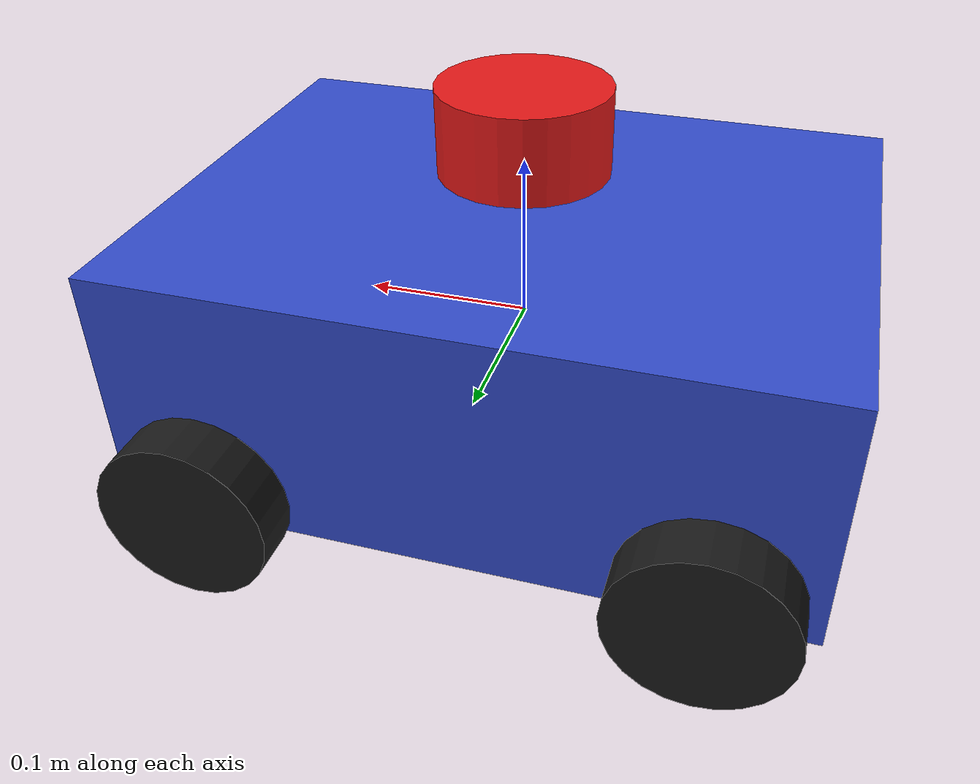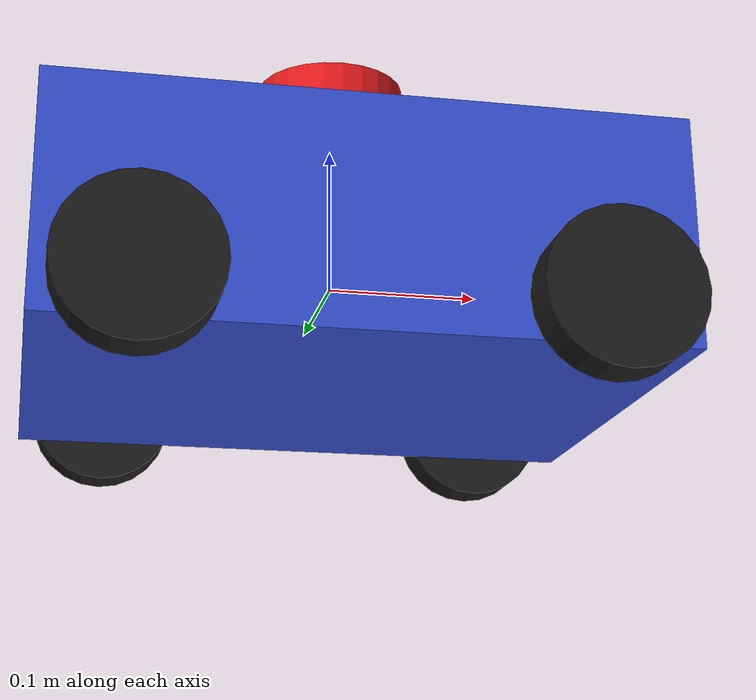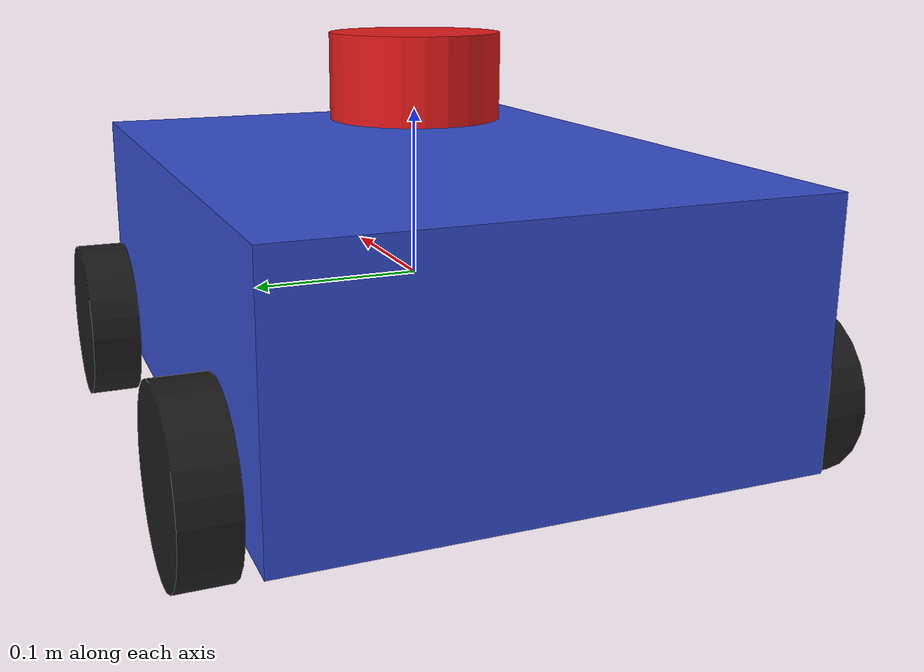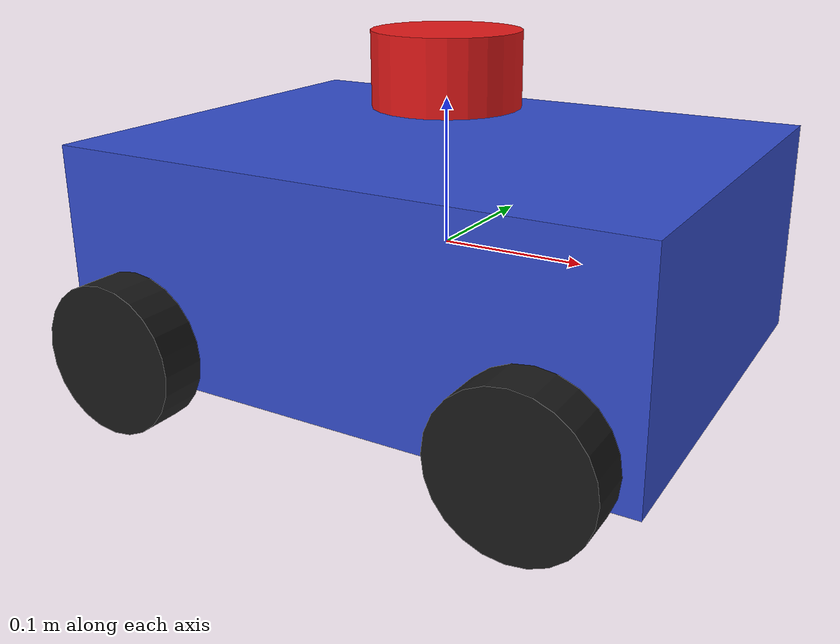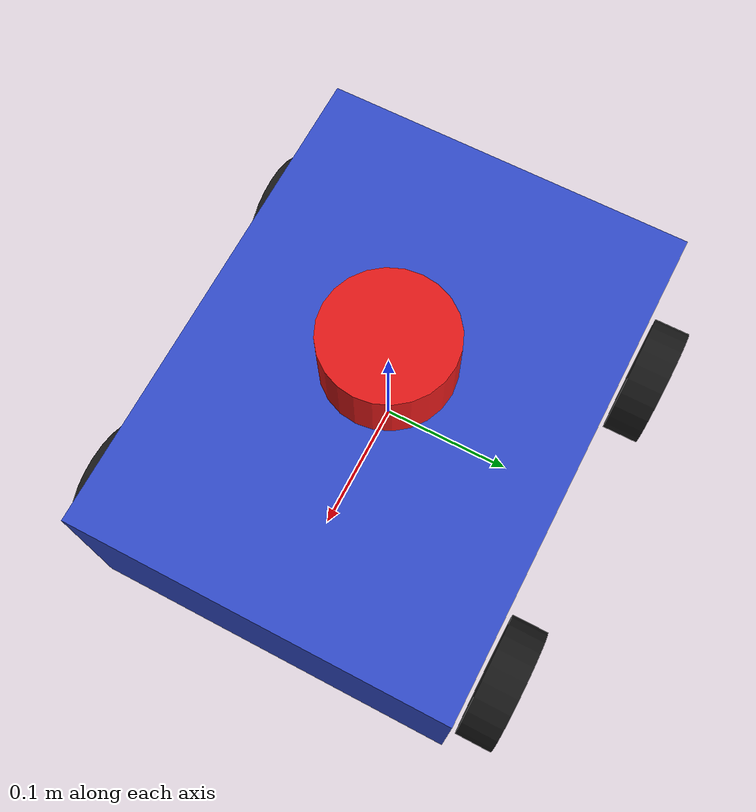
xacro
<?xml version="1.0"?>
<robot xmlns:xacro="http://www.ros.org/wiki/xacro" name="my_robot">

  <xacro:property name="base_length"  value="0.4"/>
  <xacro:property name="base_width"   value="0.3"/>
  <xacro:property name="base_height"  value="0.15"/>
  <xacro:property name="base_mass"    value="5.0"/>

  <xacro:property name="wheel_radius" value="0.05"/>
  <xacro:property name="wheel_width"  value="0.03"/>
  <xacro:property name="wheel_mass"   value="0.35"/>
  <xacro:property name="wheel_offset_x" value="0.14"/>  <!-- 半轴距，实车轴距 = 0.28 -->
  <xacro:property name="wheel_offset_y" value="0.17"/>  <!-- 半轮距，实车轮距 = 0.34 -->
  <xacro:property name="wheel_offset_z" value="-0.05"/>

  <!-- skid-steer 的摩擦各向异性。
       真实轮子横向阻力比纵向小得多（胎面/接触面变形），这个比值直接决定
       原地旋转时打滑多少。先用 1.0 / 0.5 起步，实测出来的 odom/true 比值
       要和实车对比后再调——真实值只能靠实车标定。 -->
  <xacro:property name="wheel_mu_long" value="1.0"/>   <!-- 沿滚动方向 -->
  <xacro:property name="wheel_mu_lat"  value="0.5"/>   <!-- 垂直滚动方向 -->

  <xacro:property name="wheel_separation_scale" value="1.36"/>

  <!-- ★ 速度/加速度上限：实车实测值待填。
       注意这些才是 gz-sim 8 真正认的参数；之前 URDF 里的
       max_wheel_torque / max_wheel_acceleration 在 8.15.0 的 DiffDrive
       文档和二进制里都不存在，写了也从来没生效过。 -->
  <xacro:property name="max_linear_vel"  value="0.5"/>
  <xacro:property name="max_angular_vel" value="1.5"/>
  <xacro:property name="max_linear_acc"  value="0.5"/>
  <xacro:property name="max_angular_acc" value="2.0"/>

  <!-- ★ 雷达参数：同样是占位值，从未和实车雷达核对过。
       雷达装高一点（比如 0.25）能少扫到地面；量程和角度要按实车型号改，
       否则 SLAM 会把真实存在的墙当成"超出量程"而丢掉。 -->
  <xacro:property name="lidar_mount_x"  value="0.0"/>    <!-- 相对 base_link -->
  <xacro:property name="lidar_mount_y"  value="0.0"/>
  <xacro:property name="lidar_mount_z"  value="0.12"/>
  <xacro:property name="lidar_samples"  value="360"/>    <!-- 水平线数 -->
  <xacro:property name="lidar_min_angle" value="-3.14159"/>
  <xacro:property name="lidar_max_angle" value="3.14159"/>
  <xacro:property name="lidar_range_min" value="0.1"/>
  <xacro:property name="lidar_range_max" value="12.0"/>
  <xacro:property name="lidar_update_rate" value="10"/>  <!-- Hz -->
  <xacro:property name="lidar_noise_stddev" value="0.01"/>

  <!-- ========== 驱动轮宏 ========== -->
  <xacro:macro name="drive_wheel" params="name x y">
    <link name="${name}">
      <visual>
        <geometry>
          <cylinder radius="${wheel_radius}" length="${wheel_width}"/>
        </geometry>
        <origin xyz="0 0 0" rpy="1.5708 0 0"/>
        <material name="black">
          <color rgba="0.1 0.1 0.1 1.0"/>
        </material>
      </visual>
      <collision>
        <geometry>
          <cylinder radius="${wheel_radius}" length="${wheel_width}"/>
        </geometry>
        <origin xyz="0 0 0" rpy="1.5708 0 0"/>
      </collision>
      <inertial>
        <mass value="${wheel_mass}"/>
        <inertia ixx="0.0005" ixy="0" ixz="0"
                 iyy="0.0005" iyz="0"
                 izz="0.0005"/>
      </inertial>
    </link>

    <joint name="${name}_joint" type="continuous">
      <parent link="base_link"/>
      <child link="${name}"/>
      <origin xyz="${x} ${y} ${wheel_offset_z}" rpy="0 0 0"/>
      <axis xyz="0 1 0"/>
    </joint>

    <!-- fdir1 在碰撞体坐标系里表达；碰撞体只绕 x 转了 90°，
         所以 x 轴不变，fdir1=1 0 0 就是轮子的滚动方向。 -->
    <gazebo reference="${name}">
      <surface>
        <friction>
          <ode>
            <mu>${wheel_mu_long}</mu>
            <mu2>${wheel_mu_lat}</mu2>
            <fdir1>1 0 0</fdir1>
          </ode>
        </friction>
      </surface>
    </gazebo>
  </xacro:macro>

  <!-- ========== 底盘 ========== -->
  <link name="base_link">
    <visual>
      <geometry>
        <box size="${base_length} ${base_width} ${base_height}"/>
      </geometry>
      <origin xyz="0 0 0" rpy="0 0 0"/>
      <material name="blue">
        <color rgba="0.2 0.3 0.8 1.0"/>
      </material>
    </visual>
    <collision>
      <geometry>
        <box size="${base_length} ${base_width} ${base_height}"/>
      </geometry>
      <origin xyz="0 0 0" rpy="0 0 0"/>
    </collision>
    <inertial>
      <mass value="${base_mass}"/>
      <inertia ixx="0.05" ixy="0" ixz="0"
               iyy="0.08" iyz="0"
               izz="0.1"/>
    </inertial>
  </link>

  <!-- ========== 四个驱动轮 ========== -->
  <xacro:drive_wheel name="front_left_wheel"  x="${wheel_offset_x}"  y="${wheel_offset_y}"/>
  <xacro:drive_wheel name="rear_left_wheel"   x="-${wheel_offset_x}" y="${wheel_offset_y}"/>
  <xacro:drive_wheel name="front_right_wheel" x="${wheel_offset_x}"  y="-${wheel_offset_y}"/>
  <xacro:drive_wheel name="rear_right_wheel"  x="-${wheel_offset_x}" y="-${wheel_offset_y}"/>

  <!-- ========== 激光雷达 ========== -->
  <link name="laser_frame">
    <visual>
      <geometry>
        <cylinder radius="0.05" length="0.05"/>
      </geometry>
      <material name="red">
        <color rgba="0.9 0.1 0.1 1.0"/>
      </material>
    </visual>
    <collision>
      <geometry>
        <cylinder radius="0.05" length="0.05"/>
      </geometry>
    </collision>
    <inertial>
      <mass value="0.1"/>
      <inertia ixx="0.0001" ixy="0" ixz="0"
               iyy="0.0001" iyz="0"
               izz="0.0001"/>
    </inertial>
  </link>

  <joint name="laser_joint" type="fixed">
    <parent link="base_link"/>
    <child link="laser_frame"/>
    <origin xyz="${lidar_mount_x} ${lidar_mount_y} ${lidar_mount_z}" rpy="0 0 0"/>
  </joint>

  <gazebo>
    <plugin filename="gz-sim-diff-drive-system" name="gz::sim::systems::DiffDrive">
      <left_joint>front_left_wheel_joint</left_joint>
      <left_joint>rear_left_wheel_joint</left_joint>
      <right_joint>front_right_wheel_joint</right_joint>
      <right_joint>rear_right_wheel_joint</right_joint>
      <wheel_separation>${2 * wheel_offset_y * wheel_separation_scale}</wheel_separation>
      <wheel_radius>${wheel_radius}</wheel_radius>
      <odom_topic>odom</odom_topic>
      <tf_topic>tf</tf_topic>
      <frame_id>odom</frame_id>
      <child_frame_id>base_link</child_frame_id>
      <topic>cmd_vel</topic>
      <odom_publish_frequency>50</odom_publish_frequency>
      <max_linear_velocity>${max_linear_vel}</max_linear_velocity>
      <max_angular_velocity>${max_angular_vel}</max_angular_velocity>
      <max_linear_acceleration>${max_linear_acc}</max_linear_acceleration>
      <max_angular_acceleration>${max_angular_acc}</max_angular_acceleration>
    </plugin>
  </gazebo>

  <!-- ========== Gazebo 激光雷达传感器 ========== -->
  <gazebo reference="laser_frame">
    <sensor name="lidar" type="gpu_lidar">
      <always_on>true</always_on>
      <visualize>true</visualize>
      <update_rate>${lidar_update_rate}</update_rate>
      <topic>scan</topic>
      <gz_frame_id>laser_frame</gz_frame_id>
      <lidar>
        <scan>
          <horizontal>
            <samples>${lidar_samples}</samples>
            <min_angle>${lidar_min_angle}</min_angle>
            <max_angle>${lidar_max_angle}</max_angle>
          </horizontal>
        </scan>
        <range>
          <min>${lidar_range_min}</min>
          <max>${lidar_range_max}</max>
        </range>
        <noise>
          <type>gaussian</type>
          <mean>0.0</mean>
          <stddev>${lidar_noise_stddev}</stddev>
        </noise>
      </lidar>
    </sensor>
  </gazebo>

</robot>
